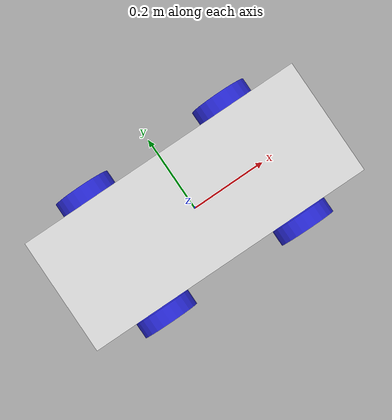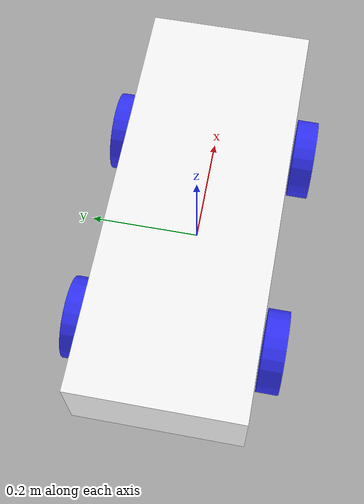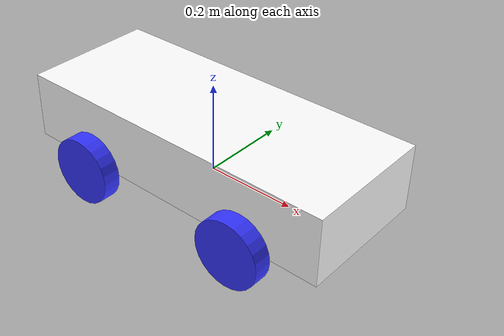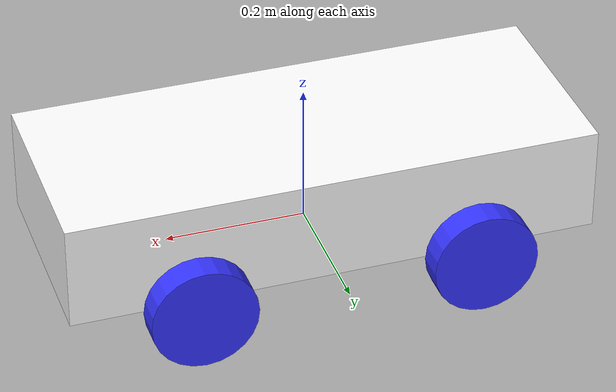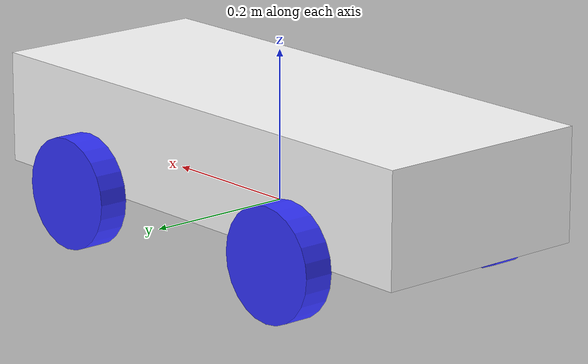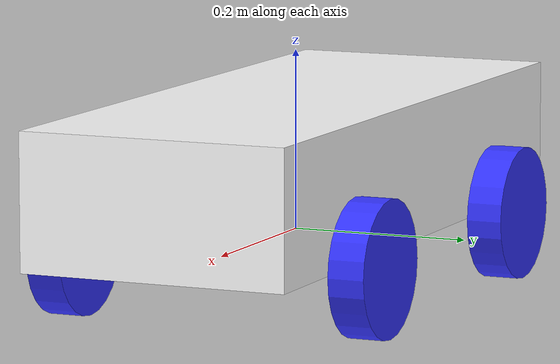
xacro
<?xml version="1.0"?>
<robot xmlns:xacro="http://www.ros.org/wiki/xacro" name="robot">
    <xacro:arg name="prefix" default="" />
    <xacro:arg name="use_mock_hardware" default="false" />

    <xacro:include filename="robot_core.xacro" />
    <xacro:include filename="ros2_control.xacro" />

    <xacro:diffbot_ros2_control name="DiffBot" prefix="$(arg prefix)" use_mock_hardware="$(arg use_mock_hardware)" />

</robot>

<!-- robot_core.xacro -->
<robot xmlns:xacro="http://www.ros.org/wiki/xacro">

  <xacro:include filename="inertial_macros.xacro" />
  <xacro:include filename="colours.xacro" />

  <!-- "TODO:" Still need to look at the inertia macros to make sure they are defined properly. -njreichert -->

  <!-- ====================== Constants ======================== -->
  <!-- Using REP 103 here. -njreichert -->

  <xacro:property name="chassis_length" value="0.75" />
  <xacro:property name="chassis_width" value="0.3" />
  <xacro:property name="chassis_height" value="0.15" />

  <xacro:property name="wheel_chassis_buffer_len" value="0.005" />
  <xacro:property name="wheel_x_spacing" value="0.2" />
  <xacro:property name="wheel_y_spacing" value="${(chassis_width / 2) + (wheel_length / 2) + wheel_chassis_buffer_len}"/>
  <xacro:property name="wheel_radius" value="0.075" />
  <xacro:property name="wheel_length" value="0.04" />

  <xacro:property name="wheel_friction" value="0.8" />

  <!-- Base Link -->
  <link name="base_link">

  </link>

  <!-- Chassis -->
  <joint name="chassis_joint" type="fixed">
    <parent link="base_link" />
    <child link="chassis" />

    <!-- separation distance between base_link (middle of chassis) and chassis origin -->
    <origin xyz="-${chassis_length / 2} 0 0" />
  </joint>

  <link name="chassis">
    <visual>
      <!-- shift box forward so chassis link origin is centered at back bottom -->
      <origin xyz="${chassis_length / 2} 0 ${chassis_height / 2}" />
      <geometry>
        <box size="${chassis_length} ${chassis_width} ${chassis_height}" />
      </geometry>
      <material name="white" />
    </visual>
    <collision>
        <origin xyz="${chassis_length / 2} 0 ${chassis_height / 2}" />
        <geometry>
          <box size="${chassis_length} ${chassis_width} ${chassis_height}" />
        </geometry>
    </collision>
    <xacro:inertial_box mass="0.5" x="${chassis_length / 2}" y="0" z="${chassis_height / 2}">
      <origin xyz="${chassis_length / 2} 0 ${chassis_height / 2}" rpy="0 0 0" />
    </xacro:inertial_box>
  </link>

  <gazebo reference="chassis">
    <material>Gazebo/White</material>
  </gazebo>

  <!-- Back Left Wheel -->
  <joint name="left_back_wheel_joint" type="continuous">
    <parent link="base_link" />
    <child link="left_back_wheel" />

    <!-- transform from parent link to child link -->
    <!-- joint is located at origin of child link -->
    <origin xyz="-${wheel_x_spacing} ${wheel_y_spacing} 0" rpy="-${pi/2} 0 0" />

    <!-- axis of rotation; takes normalized vector of direction to rotate around -->
    <axis xyz="0 0 1" />
  </joint>

  <link name="left_back_wheel">
    <visual>
      <geometry>
        <cylinder radius="${wheel_radius}" length="${wheel_length}" />
      </geometry>
      <material name="blue" />
    </visual>
    <collision>
      <geometry>
        <cylinder radius="${wheel_radius}" length="${wheel_length}" />
      </geometry>
      <surface>
        <friction>
          <ode>
            <mu>${wheel_friction}</mu>
            <mu2>${wheel_friction}</mu2>
            <slip1>0.0</slip1>
            <slip2>0.0</slip2>
          </ode>
        </friction>
      </surface>
    </collision>
    <xacro:inertial_cylinder mass="0.1" length="${wheel_length}" radius="${wheel_radius}">
      <origin xyz="0 0 0" rpy="0 0 0" />
    </xacro:inertial_cylinder>
  </link>

  <gazebo reference="left_back_wheel">
    <material>Gazebo/Blue</material>
    <mu1>${wheel_friction}</mu1>
    <mu2>${wheel_friction}</mu2>
  </gazebo>

  <!-- Front Left Wheel -->
  <joint name="left_front_wheel_joint" type="continuous">
    <parent link="base_link" />
    <child link="left_front_wheel" />

    <!-- transform from parent link to child link -->
    <!-- joint is located at origin of child link -->
    <origin xyz="${wheel_x_spacing} ${wheel_y_spacing} 0" rpy="-${pi/2} 0 0" />

    <!-- axis of rotation; takes normalized vector of direction to rotate around -->
    <axis xyz="0 0 1" />
  </joint>

  <link name="left_front_wheel">
    <visual>
      <geometry>
        <cylinder radius="${wheel_radius}" length="${wheel_length}" />
      </geometry>
      <material name="blue" />
    </visual>
    <collision>
      <geometry>
        <cylinder radius="${wheel_radius}" length="${wheel_length}" />
      </geometry>
      <surface>
        <friction>
          <ode>
            <mu>${wheel_friction}</mu>
            <mu2>${wheel_friction}</mu2>
            <slip1>0.0</slip1>
            <slip2>0.0</slip2>
          </ode>
        </friction>
      </surface>
    </collision>
    <xacro:inertial_cylinder mass="0.1" length="${wheel_length}" radius="${wheel_radius}">
      <origin xyz="0 0 0" rpy="0 0 0" />
    </xacro:inertial_cylinder>
  </link>

  <gazebo reference="left_front_wheel">
    <material>Gazebo/Blue</material>
    <mu1>${wheel_friction}</mu1>
    <mu2>${wheel_friction}</mu2>
  </gazebo>

  <!-- Back Right Wheel -->
  <joint name="right_back_wheel_joint" type="continuous">
    <parent link="base_link" />
    <child link="right_back_wheel" />
    <origin xyz="-${wheel_x_spacing} -${wheel_y_spacing} 0" rpy="${pi/2} 0 0" />
    <axis xyz="0 0 -1" />
  </joint>

  <link name="right_back_wheel">
    <visual>
      <geometry>
        <cylinder radius="${wheel_radius}" length="${wheel_length}" />
      </geometry>
      <material name="blue" />
    </visual>
    <collision>
      <geometry>
        <cylinder radius="${wheel_radius}" length="${wheel_length}" />
      </geometry>
      <surface>
        <friction>
          <ode>
            <mu>${wheel_friction}</mu>
            <mu2>${wheel_friction}</mu2>
            <slip1>0.0</slip1>
            <slip2>0.0</slip2>
          </ode>
        </friction>
      </surface>
    </collision>
    <xacro:inertial_cylinder mass="0.1" length="${wheel_length}" radius="${wheel_radius}">
      <origin xyz="0 0 0" rpy="0 0 0" />
    </xacro:inertial_cylinder>
  </link>

  <gazebo reference="right_back_wheel">
    <material>Gazebo/Blue</material>
    <mu1>${wheel_friction}</mu1>
    <mu2>${wheel_friction}</mu2>
  </gazebo>

  <!-- Front Right Wheel -->
  <joint name="right_front_wheel_joint" type="continuous">
    <parent link="base_link" />
    <child link="right_front_wheel" />

    <!-- transform from parent link to child link -->
    <!-- joint is located at origin of child link -->
    <origin xyz="${wheel_x_spacing} -${wheel_y_spacing} 0" rpy="${pi/2} 0 0" />

    <!-- axis of rotation; takes normalized vector of direction to rotate around -->
    <axis xyz="0 0 -1" />
  </joint>

  <link name="right_front_wheel">
    <visual>
      <geometry>
        <cylinder radius="${wheel_radius}" length="${wheel_length}" />
      </geometry>
      <material name="blue" />
    </visual>
    <collision>
      <geometry>
        <cylinder radius="${wheel_radius}" length="${wheel_length}" />
      </geometry>
      <surface>
        <friction>
          <ode>
            <mu>${wheel_friction}</mu>
            <mu2>${wheel_friction}</mu2>
            <slip1>0.0</slip1>
            <slip2>0.0</slip2>
          </ode>
        </friction>
      </surface>
    </collision>
    <xacro:inertial_cylinder mass="0.1" length="${wheel_length}" radius="${wheel_radius}">
      <origin xyz="0 0 0" rpy="0 0 0" />
    </xacro:inertial_cylinder>
  </link>

  <gazebo reference="right_front_wheel">
    <material>Gazebo/Blue</material>
    <mu1>${wheel_friction}</mu1>
    <mu2>${wheel_friction}</mu2>
  </gazebo>
</robot>

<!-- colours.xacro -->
<robot xmlns:xacro="http://www.ros.org/wiki/xacro">
  <material name="white">
    <color rgba="1 1 1 1" />
  </material>

  <material name="orange">
    <color rgba="1 0.3 0.1 1" />
  </material>

  <material name="blue">
    <color rgba="0.2 0.2 1 1" />
  </material>

  <material name="black">
    <color rgba="0 0 0 1" />
  </material>
</robot>
